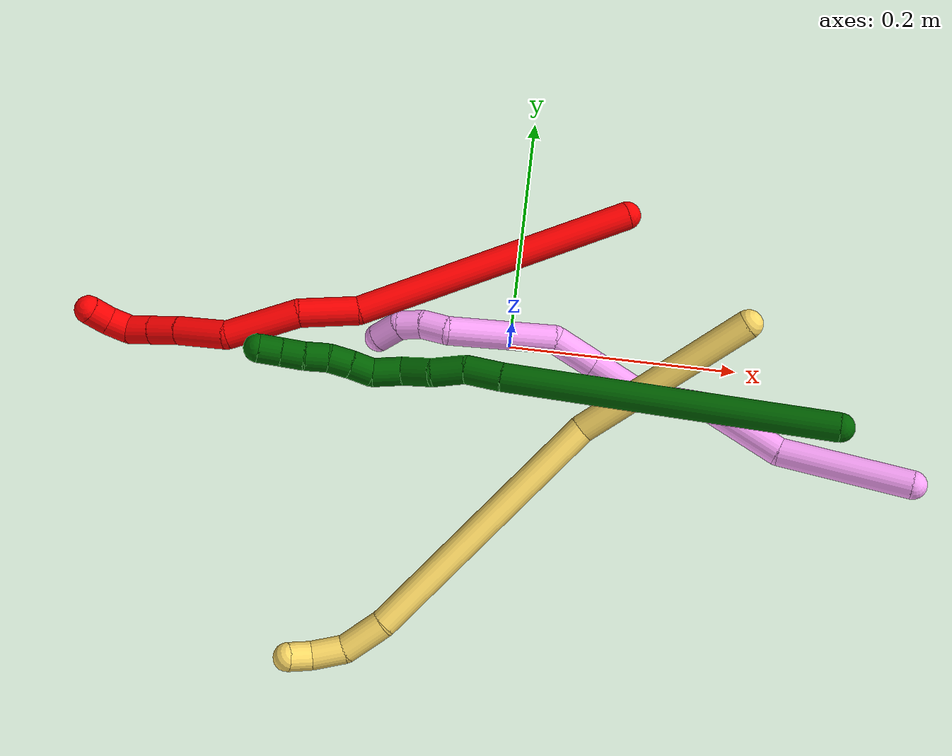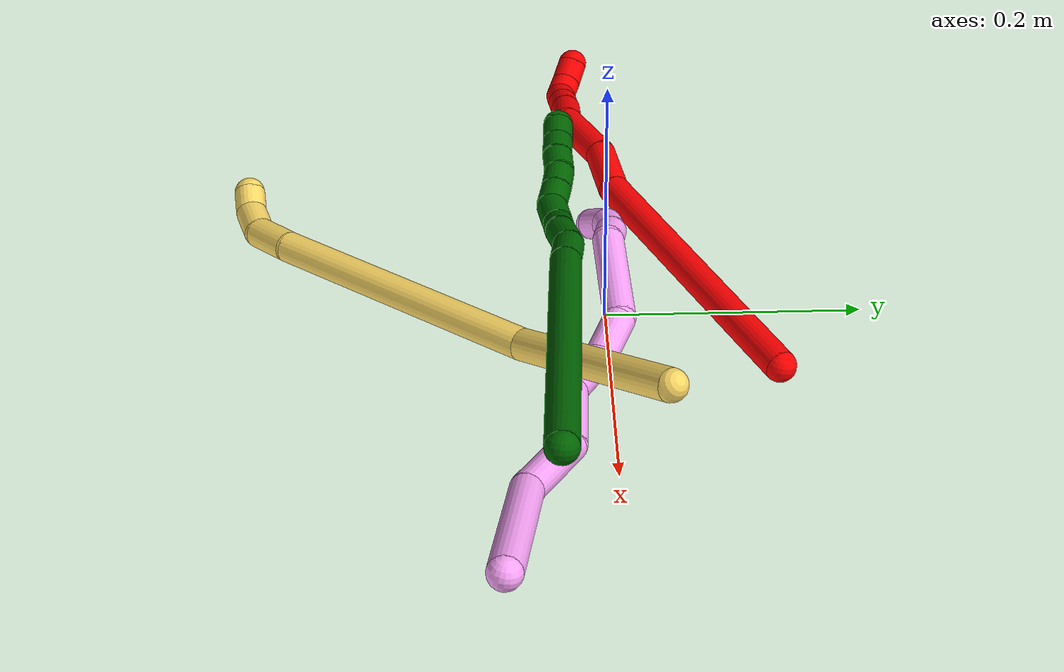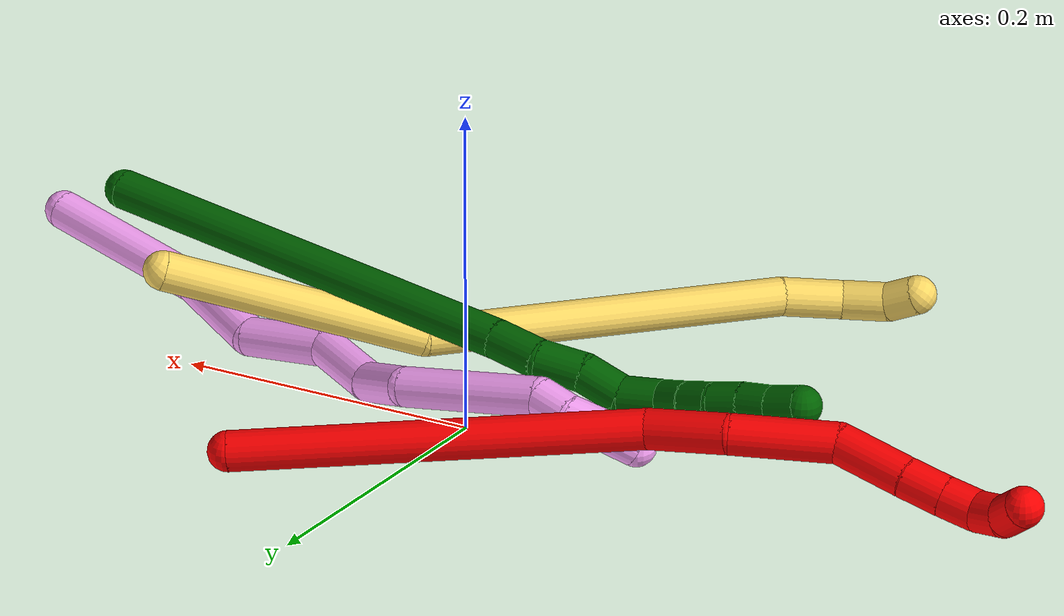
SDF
<sdf version="1.7">
 <world name="default">
  <model name="2">
   <static>0</static>
   <link name="2">
    <collision name="collision-cylinder-e_1_1_4">
     <pose>-0.10783 0.06316 -0.007631 -1.69103 -1.03777 1.14461</pose>
     <geometry><cylinder><radius>0.0125</radius><length>0.250397</length></cylinder></geometry>
     <surface>
      <friction><ode><mu>1.16</mu><mu2>1.16</mu2><slip1>0</slip1><slip2>0</slip2></ode></friction>
      <contact><ode><kp>1e+06</kp><kd>1</kd><max_vel>0</max_vel><min_depth>0.001</min_depth></ode></contact>
     </surface>
    </collision>
    <visual name="visual-cylinder-e_1_1_4">
     <pose>-0.10783 0.06316 -0.007631 -1.69103 -1.03777 1.14461</pose>
     <geometry><cylinder><radius>0.0125</radius><length>0.250397</length></cylinder></geometry>
     <material><ambient>1 0 0 1</ambient></material>
    </visual>
    <collision name="collision-cylinder-e_2_4_5">
     <pose>-0.240329 0.132167 -0.01852 -2.07923 -1.30583 1.83154</pose>
     <geometry><cylinder><radius>0.0125</radius><length>0.051122</length></cylinder></geometry>
     <surface>
      <friction><ode><mu>1.16</mu><mu2>1.16</mu2><slip1>0</slip1><slip2>0</slip2></ode></friction>
      <contact><ode><kp>1e+06</kp><kd>1</kd><max_vel>0</max_vel><min_depth>0.001</min_depth></ode></contact>
     </surface>
    </collision>
    <visual name="visual-cylinder-e_2_4_5">
     <pose>-0.240329 0.132167 -0.01852 -2.07923 -1.30583 1.83154</pose>
     <geometry><cylinder><radius>0.0125</radius><length>0.051122</length></cylinder></geometry>
     <material><ambient>1 0 0 1</ambient></material>
    </visual>
    <collision name="collision-cylinder-e_3_5_6">
     <pose>-0.294226 0.151974 -0.020375 -1.47059 -1.12325 1.03481</pose>
     <geometry><cylinder><radius>0.0125</radius><length>0.064844</length></cylinder></geometry>
     <surface>
      <friction><ode><mu>1.16</mu><mu2>1.16</mu2><slip1>0</slip1><slip2>0</slip2></ode></friction>
      <contact><ode><kp>1e+06</kp><kd>1</kd><max_vel>0</max_vel><min_depth>0.001</min_depth></ode></contact>
     </surface>
    </collision>
    <visual name="visual-cylinder-e_3_5_6">
     <pose>-0.294226 0.151974 -0.020375 -1.47059 -1.12325 1.03481</pose>
     <geometry><cylinder><radius>0.0125</radius><length>0.064844</length></cylinder></geometry>
     <material><ambient>1 0 0 1</ambient></material>
    </visual>
    <collision name="collision-cylinder-e_4_6_7">
     <pose>-0.345849 0.165868 -0.014668 0.015376 -1.3809 -0.012702</pose>
     <geometry><cylinder><radius>0.0125</radius><length>0.045607</length></cylinder></geometry>
     <surface>
      <friction><ode><mu>1.16</mu><mu2>1.16</mu2><slip1>0</slip1><slip2>0</slip2></ode></friction>
      <contact><ode><kp>1e+06</kp><kd>1</kd><max_vel>0</max_vel><min_depth>0.001</min_depth></ode></contact>
     </surface>
    </collision>
    <visual name="visual-cylinder-e_4_6_7">
     <pose>-0.345849 0.165868 -0.014668 0.015376 -1.3809 -0.012702</pose>
     <geometry><cylinder><radius>0.0125</radius><length>0.045607</length></cylinder></geometry>
     <material><ambient>1 0 0 1</ambient></material>
    </visual>
    <collision name="collision-cylinder-e_5_7_8">
     <pose>-0.380903 0.16655 -0.007605 -0.264517 -1.34875 0.211901</pose>
     <geometry><cylinder><radius>0.0125</radius><length>0.025959</length></cylinder></geometry>
     <surface>
      <friction><ode><mu>1.16</mu><mu2>1.16</mu2><slip1>0</slip1><slip2>0</slip2></ode></friction>
      <contact><ode><kp>1e+06</kp><kd>1</kd><max_vel>0</max_vel><min_depth>0.001</min_depth></ode></contact>
     </surface>
    </collision>
    <visual name="visual-cylinder-e_5_7_8">
     <pose>-0.380903 0.16655 -0.007605 -0.264517 -1.34875 0.211901</pose>
     <geometry><cylinder><radius>0.0125</radius><length>0.025959</length></cylinder></geometry>
     <material><ambient>1 0 0 1</ambient></material>
    </visual>
    <collision name="collision-cylinder-e_6_8_9">
     <pose>-0.404302 0.168039 -0.002919 -0.367913 -1.38085 0.305003</pose>
     <geometry><cylinder><radius>0.0125</radius><length>0.021869</length></cylinder></geometry>
     <surface>
      <friction><ode><mu>1.16</mu><mu2>1.16</mu2><slip1>0</slip1><slip2>0</slip2></ode></friction>
      <contact><ode><kp>1e+06</kp><kd>1</kd><max_vel>0</max_vel><min_depth>0.001</min_depth></ode></contact>
     </surface>
    </collision>
    <visual name="visual-cylinder-e_6_8_9">
     <pose>-0.404302 0.168039 -0.002919 -0.367913 -1.38085 0.305003</pose>
     <geometry><cylinder><radius>0.0125</radius><length>0.021869</length></cylinder></geometry>
     <material><ambient>1 0 0 1</ambient></material>
    </visual>
    <collision name="collision-cylinder-e_7_9_10">
     <pose>-0.424554 0.166933 -0.003724 2.54636 -1.23714 -2.3278</pose>
     <geometry><cylinder><radius>0.0125</radius><length>0.020138</length></cylinder></geometry>
     <surface>
      <friction><ode><mu>1.16</mu><mu2>1.16</mu2><slip1>0</slip1><slip2>0</slip2></ode></friction>
      <contact><ode><kp>1e+06</kp><kd>1</kd><max_vel>0</max_vel><min_depth>0.001</min_depth></ode></contact>
     </surface>
    </collision>
    <visual name="visual-cylinder-e_7_9_10">
     <pose>-0.424554 0.166933 -0.003724 2.54636 -1.23714 -2.3278</pose>
     <geometry><cylinder><radius>0.0125</radius><length>0.020138</length></cylinder></geometry>
     <material><ambient>1 0 0 1</ambient></material>
    </visual>
    <collision name="collision-cylinder-e_8_10_2">
     <pose>-0.441073 0.163361 -0.013425 2.89933 -0.772998 -2.56032</pose>
     <geometry><cylinder><radius>0.0125</radius><length>0.020063</length></cylinder></geometry>
     <surface>
      <friction><ode><mu>1.16</mu><mu2>1.16</mu2><slip1>0</slip1><slip2>0</slip2></ode></friction>
      <contact><ode><kp>1e+06</kp><kd>1</kd><max_vel>0</max_vel><min_depth>0.001</min_depth></ode></contact>
     </surface>
    </collision>
    <visual name="visual-cylinder-e_8_10_2">
     <pose>-0.441073 0.163361 -0.013425 2.89933 -0.772998 -2.56032</pose>
     <geometry><cylinder><radius>0.0125</radius><length>0.020063</length></cylinder></geometry>
     <material><ambient>1 0 0 1</ambient></material>
    </visual>
    <collision name="collision-sphere-2">
     <pose>-0.448078 0.161639 -0.020397 0 -0 0</pose>
     <geometry><sphere><radius>0.0125</radius></sphere></geometry>
     <surface>
      <friction><ode><mu>1.16</mu><mu2>1.16</mu2><slip1>0</slip1><slip2>0</slip2></ode></friction>
      <contact><ode><kp>1e+06</kp><kd>1</kd><max_vel>0</max_vel><min_depth>0.001</min_depth></ode></contact>
     </surface>
    </collision>
    <visual name="visual-sphere-2">
     <pose>-0.448078 0.161639 -0.020397 0 -0 0</pose>
     <geometry><sphere><radius>0.0125</radius></sphere></geometry>
     <material><ambient>1 0 0 1</ambient></material>
    </visual>
    <collision name="collision-sphere-10">
     <pose>-0.434068 0.165084 -0.006454 0 -0 0</pose>
     <geometry><sphere><radius>0.0125</radius></sphere></geometry>
     <surface>
      <friction><ode><mu>1.16</mu><mu2>1.16</mu2><slip1>0</slip1><slip2>0</slip2></ode></friction>
      <contact><ode><kp>1e+06</kp><kd>1</kd><max_vel>0</max_vel><min_depth>0.001</min_depth></ode></contact>
     </surface>
    </collision>
    <visual name="visual-sphere-10">
     <pose>-0.434068 0.165084 -0.006454 0 -0 0</pose>
     <geometry><sphere><radius>0.0125</radius></sphere></geometry>
     <material><ambient>1 0 0 1</ambient></material>
    </visual>
    <collision name="collision-sphere-9">
     <pose>-0.41504 0.168782 -0.000993 0 -0 0</pose>
     <geometry><sphere><radius>0.0125</radius></sphere></geometry>
     <surface>
      <friction><ode><mu>1.16</mu><mu2>1.16</mu2><slip1>0</slip1><slip2>0</slip2></ode></friction>
      <contact><ode><kp>1e+06</kp><kd>1</kd><max_vel>0</max_vel><min_depth>0.001</min_depth></ode></contact>
     </surface>
    </collision>
    <visual name="visual-sphere-9">
     <pose>-0.41504 0.168782 -0.000993 0 -0 0</pose>
     <geometry><sphere><radius>0.0125</radius></sphere></geometry>
     <material><ambient>1 0 0 1</ambient></material>
    </visual>
    <collision name="collision-sphere-4">
     <pose>-0.21566 0.12632 -0.015262 0 -0 0</pose>
     <geometry><sphere><radius>0.0125</radius></sphere></geometry>
     <surface>
      <friction><ode><mu>1.16</mu><mu2>1.16</mu2><slip1>0</slip1><slip2>0</slip2></ode></friction>
      <contact><ode><kp>1e+06</kp><kd>1</kd><max_vel>0</max_vel><min_depth>0.001</min_depth></ode></contact>
     </surface>
    </collision>
    <visual name="visual-sphere-4">
     <pose>-0.21566 0.12632 -0.015262 0 -0 0</pose>
     <geometry><sphere><radius>0.0125</radius></sphere></geometry>
     <material><ambient>1 0 0 1</ambient></material>
    </visual>
    <collision name="collision-sphere-1">
     <geometry><sphere><radius>0.0125</radius></sphere></geometry>
     <surface>
      <friction><ode><mu>1.16</mu><mu2>1.16</mu2><slip1>0</slip1><slip2>0</slip2></ode></friction>
      <contact><ode><kp>1e+06</kp><kd>1</kd><max_vel>0</max_vel><min_depth>0.001</min_depth></ode></contact>
     </surface>
    </collision>
    <visual name="visual-sphere-1">
     <geometry><sphere><radius>0.0125</radius></sphere></geometry>
     <material><ambient>1 0 0 1</ambient></material>
    </visual>
    <collision name="collision-sphere-8">
     <pose>-0.393564 0.167297 -0.004846 0 -0 0</pose>
     <geometry><sphere><radius>0.0125</radius></sphere></geometry>
     <surface>
      <friction><ode><mu>1.16</mu><mu2>1.16</mu2><slip1>0</slip1><slip2>0</slip2></ode></friction>
      <contact><ode><kp>1e+06</kp><kd>1</kd><max_vel>0</max_vel><min_depth>0.001</min_depth></ode></contact>
     </surface>
    </collision>
    <visual name="visual-sphere-8">
     <pose>-0.393564 0.167297 -0.004846 0 -0 0</pose>
     <geometry><sphere><radius>0.0125</radius></sphere></geometry>
     <material><ambient>1 0 0 1</ambient></material>
    </visual>
    <collision name="collision-sphere-5">
     <pose>-0.264998 0.138014 -0.021779 0 -0 0</pose>
     <geometry><sphere><radius>0.0125</radius></sphere></geometry>
     <surface>
      <friction><ode><mu>1.16</mu><mu2>1.16</mu2><slip1>0</slip1><slip2>0</slip2></ode></friction>
      <contact><ode><kp>1e+06</kp><kd>1</kd><max_vel>0</max_vel><min_depth>0.001</min_depth></ode></contact>
     </surface>
    </collision>
    <visual name="visual-sphere-5">
     <pose>-0.264998 0.138014 -0.021779 0 -0 0</pose>
     <geometry><sphere><radius>0.0125</radius></sphere></geometry>
     <material><ambient>1 0 0 1</ambient></material>
    </visual>
    <collision name="collision-sphere-6">
     <pose>-0.323455 0.165935 -0.018971 0 -0 0</pose>
     <geometry><sphere><radius>0.0125</radius></sphere></geometry>
     <surface>
      <friction><ode><mu>1.16</mu><mu2>1.16</mu2><slip1>0</slip1><slip2>0</slip2></ode></friction>
      <contact><ode><kp>1e+06</kp><kd>1</kd><max_vel>0</max_vel><min_depth>0.001</min_depth></ode></contact>
     </surface>
    </collision>
    <visual name="visual-sphere-6">
     <pose>-0.323455 0.165935 -0.018971 0 -0 0</pose>
     <geometry><sphere><radius>0.0125</radius></sphere></geometry>
     <material><ambient>1 0 0 1</ambient></material>
    </visual>
    <collision name="collision-sphere-7">
     <pose>-0.368242 0.165802 -0.010364 0 -0 0</pose>
     <geometry><sphere><radius>0.0125</radius></sphere></geometry>
     <surface>
      <friction><ode><mu>1.16</mu><mu2>1.16</mu2><slip1>0</slip1><slip2>0</slip2></ode></friction>
      <contact><ode><kp>1e+06</kp><kd>1</kd><max_vel>0</max_vel><min_depth>0.001</min_depth></ode></contact>
     </surface>
    </collision>
    <visual name="visual-sphere-7">
     <pose>-0.368242 0.165802 -0.010364 0 -0 0</pose>
     <geometry><sphere><radius>0.0125</radius></sphere></geometry>
     <material><ambient>1 0 0 1</ambient></material>
    </visual>
    <inertial>
     <pose>-0.220534 0.109257 -0.010907 0 -0 0</pose>
     <mass>0.5</mass>
     <inertia>
      <ixx>0.00087</ixx>
      <ixy>0</ixy>
      <ixz>0</ixz>
      <iyy>0.001645</iyy>
      <iyz>0</iyz>
      <izz>0.000507</izz>
     </inertia>
    </inertial>
   </link>
   <pose>0.089402 0.126246 0.012318 2.94739 -0.08262 -0.037764</pose>
  </model>
  <model name="4">
   <static>0</static>
   <link name="4">
    <collision name="collision-cylinder-e_1_1_4">
     <pose>-0.055822 0.010734 0.007309 -0.973 -1.34223 0.795231</pose>
     <geometry><cylinder><radius>0.0125</radius><length>0.114625</length></cylinder></geometry>
     <surface>
      <friction><ode><mu>1.16</mu><mu2>1.16</mu2><slip1>0</slip1><slip2>0</slip2></ode></friction>
      <contact><ode><kp>1e+06</kp><kd>1</kd><max_vel>0</max_vel><min_depth>0.001</min_depth></ode></contact>
     </surface>
    </collision>
    <visual name="visual-cylinder-e_1_1_4">
     <pose>-0.055822 0.010734 0.007309 -0.973 -1.34223 0.795231</pose>
     <geometry><cylinder><radius>0.0125</radius><length>0.114625</length></cylinder></geometry>
     <material><ambient>1 0.65098 0.996078 1</ambient></material>
    </visual>
    <collision name="collision-cylinder-e_2_4_5">
     <pose>-0.147063 0.016816 0.016264 1.23064 -1.43237 -1.10307</pose>
     <geometry><cylinder><radius>0.0125</radius><length>0.071523</length></cylinder></geometry>
     <surface>
      <friction><ode><mu>1.16</mu><mu2>1.16</mu2><slip1>0</slip1><slip2>0</slip2></ode></friction>
      <contact><ode><kp>1e+06</kp><kd>1</kd><max_vel>0</max_vel><min_depth>0.001</min_depth></ode></contact>
     </surface>
    </collision>
    <visual name="visual-cylinder-e_2_4_5">
     <pose>-0.147063 0.016816 0.016264 1.23064 -1.43237 -1.10307</pose>
     <geometry><cylinder><radius>0.0125</radius><length>0.071523</length></cylinder></geometry>
     <material><ambient>1 0.65098 0.996078 1</ambient></material>
    </visual>
    <collision name="collision-cylinder-e_3_5_6">
     <pose>-0.209808 0.02173 0.013389 -2.0123 -1.20139 1.6492</pose>
     <geometry><cylinder><radius>0.0125</radius><length>0.058603</length></cylinder></geometry>
     <surface>
      <friction><ode><mu>1.16</mu><mu2>1.16</mu2><slip1>0</slip1><slip2>0</slip2></ode></friction>
      <contact><ode><kp>1e+06</kp><kd>1</kd><max_vel>0</max_vel><min_depth>0.001</min_depth></ode></contact>
     </surface>
    </collision>
    <visual name="visual-cylinder-e_3_5_6">
     <pose>-0.209808 0.02173 0.013389 -2.0123 -1.20139 1.6492</pose>
     <geometry><cylinder><radius>0.0125</radius><length>0.058603</length></cylinder></geometry>
     <material><ambient>1 0.65098 0.996078 1</ambient></material>
    </visual>
    <collision name="collision-cylinder-e_4_6_7">
     <pose>-0.262811 0.028153 0.008374 1.72696 -1.44755 -1.60404</pose>
     <geometry><cylinder><radius>0.0125</radius><length>0.051749</length></cylinder></geometry>
     <surface>
      <friction><ode><mu>1.16</mu><mu2>1.16</mu2><slip1>0</slip1><slip2>0</slip2></ode></friction>
      <contact><ode><kp>1e+06</kp><kd>1</kd><max_vel>0</max_vel><min_depth>0.001</min_depth></ode></contact>
     </surface>
    </collision>
    <visual name="visual-cylinder-e_4_6_7">
     <pose>-0.262811 0.028153 0.008374 1.72696 -1.44755 -1.60404</pose>
     <geometry><cylinder><radius>0.0125</radius><length>0.051749</length></cylinder></geometry>
     <material><ambient>1 0.65098 0.996078 1</ambient></material>
    </visual>
    <collision name="collision-cylinder-e_5_7_8">
     <pose>-0.307721 0.024344 0.000352 3.05326 -1.19641 -3.01208</pose>
     <geometry><cylinder><radius>0.0125</radius><length>0.041326</length></cylinder></geometry>
     <surface>
      <friction><ode><mu>1.16</mu><mu2>1.16</mu2><slip1>0</slip1><slip2>0</slip2></ode></friction>
      <contact><ode><kp>1e+06</kp><kd>1</kd><max_vel>0</max_vel><min_depth>0.001</min_depth></ode></contact>
     </surface>
    </collision>
    <visual name="visual-cylinder-e_5_7_8">
     <pose>-0.307721 0.024344 0.000352 3.05326 -1.19641 -3.01208</pose>
     <geometry><cylinder><radius>0.0125</radius><length>0.041326</length></cylinder></geometry>
     <material><ambient>1 0.65098 0.996078 1</ambient></material>
    </visual>
    <collision name="collision-cylinder-e_6_8_9">
     <pose>-0.368963 0.042756 -0.015001 -1.96005 -1.11448 1.49731</pose>
     <geometry><cylinder><radius>0.0125</radius><length>0.093596</length></cylinder></geometry>
     <surface>
      <friction><ode><mu>1.16</mu><mu2>1.16</mu2><slip1>0</slip1><slip2>0</slip2></ode></friction>
      <contact><ode><kp>1e+06</kp><kd>1</kd><max_vel>0</max_vel><min_depth>0.001</min_depth></ode></contact>
     </surface>
    </collision>
    <visual name="visual-cylinder-e_6_8_9">
     <pose>-0.368963 0.042756 -0.015001 -1.96005 -1.11448 1.49731</pose>
     <geometry><cylinder><radius>0.0125</radius><length>0.093596</length></cylinder></geometry>
     <material><ambient>1 0.65098 0.996078 1</ambient></material>
    </visual>
    <collision name="collision-cylinder-e_7_9_10">
     <pose>-0.422207 0.063749 -0.020902 -0.7829 -1.33374 0.628295</pose>
     <geometry><cylinder><radius>0.0125</radius><length>0.023116</length></cylinder></geometry>
     <surface>
      <friction><ode><mu>1.16</mu><mu2>1.16</mu2><slip1>0</slip1><slip2>0</slip2></ode></friction>
      <contact><ode><kp>1e+06</kp><kd>1</kd><max_vel>0</max_vel><min_depth>0.001</min_depth></ode></contact>
     </surface>
    </collision>
    <visual name="visual-cylinder-e_7_9_10">
     <pose>-0.422207 0.063749 -0.020902 -0.7829 -1.33374 0.628295</pose>
     <geometry><cylinder><radius>0.0125</radius><length>0.023116</length></cylinder></geometry>
     <material><ambient>1 0.65098 0.996078 1</ambient></material>
    </visual>
    <collision name="collision-cylinder-e_8_10_11">
     <pose>-0.442689 0.069953 -0.016664 -1.07608 -1.08577 0.691226</pose>
     <geometry><cylinder><radius>0.0125</radius><length>0.020906</length></cylinder></geometry>
     <surface>
      <friction><ode><mu>1.16</mu><mu2>1.16</mu2><slip1>0</slip1><slip2>0</slip2></ode></friction>
      <contact><ode><kp>1e+06</kp><kd>1</kd><max_vel>0</max_vel><min_depth>0.001</min_depth></ode></contact>
     </surface>
    </collision>
    <visual name="visual-cylinder-e_8_10_11">
     <pose>-0.442689 0.069953 -0.016664 -1.07608 -1.08577 0.691226</pose>
     <geometry><cylinder><radius>0.0125</radius><length>0.020906</length></cylinder></geometry>
     <material><ambient>1 0.65098 0.996078 1</ambient></material>
    </visual>
    <collision name="collision-cylinder-e_9_11_2">
     <pose>-0.458985 0.082126 -0.008114 -0.901601 -0.611493 0.303225</pose>
     <geometry><cylinder><radius>0.0125</radius><length>0.024555</length></cylinder></geometry>
     <surface>
      <friction><ode><mu>1.16</mu><mu2>1.16</mu2><slip1>0</slip1><slip2>0</slip2></ode></friction>
      <contact><ode><kp>1e+06</kp><kd>1</kd><max_vel>0</max_vel><min_depth>0.001</min_depth></ode></contact>
     </surface>
    </collision>
    <visual name="visual-cylinder-e_9_11_2">
     <pose>-0.458985 0.082126 -0.008114 -0.901601 -0.611493 0.303225</pose>
     <geometry><cylinder><radius>0.0125</radius><length>0.024555</length></cylinder></geometry>
     <material><ambient>1 0.65098 0.996078 1</ambient></material>
    </visual>
    <collision name="collision-sphere-2">
     <pose>-0.466034 0.090011 -0.001878 0 -0 0</pose>
     <geometry><sphere><radius>0.0125</radius></sphere></geometry>
     <surface>
      <friction><ode><mu>1.16</mu><mu2>1.16</mu2><slip1>0</slip1><slip2>0</slip2></ode></friction>
      <contact><ode><kp>1e+06</kp><kd>1</kd><max_vel>0</max_vel><min_depth>0.001</min_depth></ode></contact>
     </surface>
    </collision>
    <visual name="visual-sphere-2">
     <pose>-0.466034 0.090011 -0.001878 0 -0 0</pose>
     <geometry><sphere><radius>0.0125</radius></sphere></geometry>
     <material><ambient>1 0.65098 0.996078 1</ambient></material>
    </visual>
    <collision name="collision-sphere-11">
     <pose>-0.451937 0.074242 -0.01435 0 -0 0</pose>
     <geometry><sphere><radius>0.0125</radius></sphere></geometry>
     <surface>
      <friction><ode><mu>1.16</mu><mu2>1.16</mu2><slip1>0</slip1><slip2>0</slip2></ode></friction>
      <contact><ode><kp>1e+06</kp><kd>1</kd><max_vel>0</max_vel><min_depth>0.001</min_depth></ode></contact>
     </surface>
    </collision>
    <visual name="visual-sphere-11">
     <pose>-0.451937 0.074242 -0.01435 0 -0 0</pose>
     <geometry><sphere><radius>0.0125</radius></sphere></geometry>
     <material><ambient>1 0.65098 0.996078 1</ambient></material>
    </visual>
    <collision name="collision-sphere-10">
     <pose>-0.433442 0.065663 -0.018978 0 -0 0</pose>
     <geometry><sphere><radius>0.0125</radius></sphere></geometry>
     <surface>
      <friction><ode><mu>1.16</mu><mu2>1.16</mu2><slip1>0</slip1><slip2>0</slip2></ode></friction>
      <contact><ode><kp>1e+06</kp><kd>1</kd><max_vel>0</max_vel><min_depth>0.001</min_depth></ode></contact>
     </surface>
    </collision>
    <visual name="visual-sphere-10">
     <pose>-0.433442 0.065663 -0.018978 0 -0 0</pose>
     <geometry><sphere><radius>0.0125</radius></sphere></geometry>
     <material><ambient>1 0.65098 0.996078 1</ambient></material>
    </visual>
    <collision name="collision-sphere-9">
     <pose>-0.410972 0.061834 -0.022826 0 -0 0</pose>
     <geometry><sphere><radius>0.0125</radius></sphere></geometry>
     <surface>
      <friction><ode><mu>1.16</mu><mu2>1.16</mu2><slip1>0</slip1><slip2>0</slip2></ode></friction>
      <contact><ode><kp>1e+06</kp><kd>1</kd><max_vel>0</max_vel><min_depth>0.001</min_depth></ode></contact>
     </surface>
    </collision>
    <visual name="visual-sphere-9">
     <pose>-0.410972 0.061834 -0.022826 0 -0 0</pose>
     <geometry><sphere><radius>0.0125</radius></sphere></geometry>
     <material><ambient>1 0.65098 0.996078 1</ambient></material>
    </visual>
    <collision name="collision-sphere-4">
     <pose>-0.111643 0.021468 0.014617 0 -0 0</pose>
     <geometry><sphere><radius>0.0125</radius></sphere></geometry>
     <surface>
      <friction><ode><mu>1.16</mu><mu2>1.16</mu2><slip1>0</slip1><slip2>0</slip2></ode></friction>
      <contact><ode><kp>1e+06</kp><kd>1</kd><max_vel>0</max_vel><min_depth>0.001</min_depth></ode></contact>
     </surface>
    </collision>
    <visual name="visual-sphere-4">
     <pose>-0.111643 0.021468 0.014617 0 -0 0</pose>
     <geometry><sphere><radius>0.0125</radius></sphere></geometry>
     <material><ambient>1 0.65098 0.996078 1</ambient></material>
    </visual>
    <collision name="collision-sphere-1">
     <geometry><sphere><radius>0.0125</radius></sphere></geometry>
     <surface>
      <friction><ode><mu>1.16</mu><mu2>1.16</mu2><slip1>0</slip1><slip2>0</slip2></ode></friction>
      <contact><ode><kp>1e+06</kp><kd>1</kd><max_vel>0</max_vel><min_depth>0.001</min_depth></ode></contact>
     </surface>
    </collision>
    <visual name="visual-sphere-1">
     <geometry><sphere><radius>0.0125</radius></sphere></geometry>
     <material><ambient>1 0.65098 0.996078 1</ambient></material>
    </visual>
    <collision name="collision-sphere-8">
     <pose>-0.326953 0.023677 -0.007175 0 -0 0</pose>
     <geometry><sphere><radius>0.0125</radius></sphere></geometry>
     <surface>
      <friction><ode><mu>1.16</mu><mu2>1.16</mu2><slip1>0</slip1><slip2>0</slip2></ode></friction>
      <contact><ode><kp>1e+06</kp><kd>1</kd><max_vel>0</max_vel><min_depth>0.001</min_depth></ode></contact>
     </surface>
    </collision>
    <visual name="visual-sphere-8">
     <pose>-0.326953 0.023677 -0.007175 0 -0 0</pose>
     <geometry><sphere><radius>0.0125</radius></sphere></geometry>
     <material><ambient>1 0.65098 0.996078 1</ambient></material>
    </visual>
    <collision name="collision-sphere-5">
     <pose>-0.182483 0.012164 0.01791 0 -0 0</pose>
     <geometry><sphere><radius>0.0125</radius></sphere></geometry>
     <surface>
      <friction><ode><mu>1.16</mu><mu2>1.16</mu2><slip1>0</slip1><slip2>0</slip2></ode></friction>
      <contact><ode><kp>1e+06</kp><kd>1</kd><max_vel>0</max_vel><min_depth>0.001</min_depth></ode></contact>
     </surface>
    </collision>
    <visual name="visual-sphere-5">
     <pose>-0.182483 0.012164 0.01791 0 -0 0</pose>
     <geometry><sphere><radius>0.0125</radius></sphere></geometry>
     <material><ambient>1 0.65098 0.996078 1</ambient></material>
    </visual>
    <collision name="collision-sphere-6">
     <pose>-0.237133 0.031295 0.008869 0 -0 0</pose>
     <geometry><sphere><radius>0.0125</radius></sphere></geometry>
     <surface>
      <friction><ode><mu>1.16</mu><mu2>1.16</mu2><slip1>0</slip1><slip2>0</slip2></ode></friction>
      <contact><ode><kp>1e+06</kp><kd>1</kd><max_vel>0</max_vel><min_depth>0.001</min_depth></ode></contact>
     </surface>
    </collision>
    <visual name="visual-sphere-6">
     <pose>-0.237133 0.031295 0.008869 0 -0 0</pose>
     <geometry><sphere><radius>0.0125</radius></sphere></geometry>
     <material><ambient>1 0.65098 0.996078 1</ambient></material>
    </visual>
    <collision name="collision-sphere-7">
     <pose>-0.288489 0.025011 0.007879 0 -0 0</pose>
     <geometry><sphere><radius>0.0125</radius></sphere></geometry>
     <surface>
      <friction><ode><mu>1.16</mu><mu2>1.16</mu2><slip1>0</slip1><slip2>0</slip2></ode></friction>
      <contact><ode><kp>1e+06</kp><kd>1</kd><max_vel>0</max_vel><min_depth>0.001</min_depth></ode></contact>
     </surface>
    </collision>
    <visual name="visual-sphere-7">
     <pose>-0.288489 0.025011 0.007879 0 -0 0</pose>
     <geometry><sphere><radius>0.0125</radius></sphere></geometry>
     <material><ambient>1 0.65098 0.996078 1</ambient></material>
    </visual>
    <inertial>
     <pose>-0.240696 0.030248 0.001597 0 -0 0</pose>
     <mass>0.5</mass>
     <inertia><ixx>4.3e-05</ixx><ixy>0</ixy><ixz>0</ixz><iyy>0.00032</iyy><iyz>0</iyz><izz>0.000211</izz></inertia>
    </inertial>
   </link>
   <pose>0.352061 -0.082042 0.046579 3.01215 -0.104241 -0.351537</pose>
  </model>
  <model name="5">
   <static>0</static>
   <link name="5">
    <collision name="collision-cylinder-e_1_1_4">
     <pose>-0.020942 -0.028995 0.076807 0.360968 -0.249764 -0.045805</pose>
     <geometry><cylinder><radius>0.0125</radius><length>0.169453</length></cylinder></geometry>
     <surface>
      <friction><ode><mu>1.16</mu><mu2>1.16</mu2><slip1>0</slip1><slip2>0</slip2></ode></friction>
      <contact><ode><kp>1e+06</kp><kd>1</kd><max_vel>0</max_vel><min_depth>0.001</min_depth></ode></contact>
     </surface>
    </collision>
    <visual name="visual-cylinder-e_1_1_4">
     <pose>-0.020942 -0.028995 0.076807 0.360968 -0.249764 -0.045805</pose>
     <geometry><cylinder><radius>0.0125</radius><length>0.169453</length></cylinder></geometry>
     <material><ambient>1 0.858824 0.4 1</ambient></material>
    </visual>
    <collision name="collision-cylinder-e_2_4_5">
     <pose>-0.10956 -0.100126 0.242971 0.440621 -0.600601 -0.138475</pose>
     <geometry><cylinder><radius>0.0125</radius><length>0.239499</length></cylinder></geometry>
     <surface>
      <friction><ode><mu>1.16</mu><mu2>1.16</mu2><slip1>0</slip1><slip2>0</slip2></ode></friction>
      <contact><ode><kp>1e+06</kp><kd>1</kd><max_vel>0</max_vel><min_depth>0.001</min_depth></ode></contact>
     </surface>
    </collision>
    <visual name="visual-cylinder-e_2_4_5">
     <pose>-0.10956 -0.100126 0.242971 0.440621 -0.600601 -0.138475</pose>
     <geometry><cylinder><radius>0.0125</radius><length>0.239499</length></cylinder></geometry>
     <material><ambient>1 0.858824 0.4 1</ambient></material>
    </visual>
    <collision name="collision-cylinder-e_3_5_6">
     <pose>-0.18512 -0.150996 0.348672 0.49082 -0.402298 -0.102052</pose>
     <geometry><cylinder><radius>0.0125</radius><length>0.040281</length></cylinder></geometry>
     <surface>
      <friction><ode><mu>1.16</mu><mu2>1.16</mu2><slip1>0</slip1><slip2>0</slip2></ode></friction>
      <contact><ode><kp>1e+06</kp><kd>1</kd><max_vel>0</max_vel><min_depth>0.001</min_depth></ode></contact>
     </surface>
    </collision>
    <visual name="visual-cylinder-e_3_5_6">
     <pose>-0.18512 -0.150996 0.348672 0.49082 -0.402298 -0.102052</pose>
     <geometry><cylinder><radius>0.0125</radius><length>0.040281</length></cylinder></geometry>
     <material><ambient>1 0.858824 0.4 1</ambient></material>
    </visual>
    <collision name="collision-cylinder-e_4_6_7">
     <pose>-0.195476 -0.171088 0.374485 0.875798 -0.165507 -0.077631</pose>
     <geometry><cylinder><radius>0.0125</radius><length>0.029981</length></cylinder></geometry>
     <surface>
      <friction><ode><mu>1.16</mu><mu2>1.16</mu2><slip1>0</slip1><slip2>0</slip2></ode></friction>
      <contact><ode><kp>1e+06</kp><kd>1</kd><max_vel>0</max_vel><min_depth>0.001</min_depth></ode></contact>
     </surface>
    </collision>
    <visual name="visual-cylinder-e_4_6_7">
     <pose>-0.195476 -0.171088 0.374485 0.875798 -0.165507 -0.077631</pose>
     <geometry><cylinder><radius>0.0125</radius><length>0.029981</length></cylinder></geometry>
     <material><ambient>1 0.858824 0.4 1</ambient></material>
    </visual>
    <collision name="collision-cylinder-e_5_7_2">
     <pose>-0.200065 -0.192178 0.386917 1.27529 -0.2054 -0.15242</pose>
     <geometry><cylinder><radius>0.0125</radius><length>0.020786</length></cylinder></geometry>
     <surface>
      <friction><ode><mu>1.16</mu><mu2>1.16</mu2><slip1>0</slip1><slip2>0</slip2></ode></friction>
      <contact><ode><kp>1e+06</kp><kd>1</kd><max_vel>0</max_vel><min_depth>0.001</min_depth></ode></contact>
     </surface>
    </collision>
    <visual name="visual-cylinder-e_5_7_2">
     <pose>-0.200065 -0.192178 0.386917 1.27529 -0.2054 -0.15242</pose>
     <geometry><cylinder><radius>0.0125</radius><length>0.020786</length></cylinder></geometry>
     <material><ambient>1 0.858824 0.4 1</ambient></material>
    </visual>
    <collision name="collision-sphere-2">
     <pose>-0.202185 -0.201911 0.38988 0 -0 0</pose>
     <geometry><sphere><radius>0.0125</radius></sphere></geometry>
     <surface>
      <friction><ode><mu>1.16</mu><mu2>1.16</mu2><slip1>0</slip1><slip2>0</slip2></ode></friction>
      <contact><ode><kp>1e+06</kp><kd>1</kd><max_vel>0</max_vel><min_depth>0.001</min_depth></ode></contact>
     </surface>
    </collision>
    <visual name="visual-sphere-2">
     <pose>-0.202185 -0.201911 0.38988 0 -0 0</pose>
     <geometry><sphere><radius>0.0125</radius></sphere></geometry>
     <material><ambient>1 0.858824 0.4 1</ambient></material>
    </visual>
    <collision name="collision-sphere-7">
     <pose>-0.197945 -0.182444 0.383954 0 -0 0</pose>
     <geometry><sphere><radius>0.0125</radius></sphere></geometry>
     <surface>
      <friction><ode><mu>1.16</mu><mu2>1.16</mu2><slip1>0</slip1><slip2>0</slip2></ode></friction>
      <contact><ode><kp>1e+06</kp><kd>1</kd><max_vel>0</max_vel><min_depth>0.001</min_depth></ode></contact>
     </surface>
    </collision>
    <visual name="visual-sphere-7">
     <pose>-0.197945 -0.182444 0.383954 0 -0 0</pose>
     <geometry><sphere><radius>0.0125</radius></sphere></geometry>
     <material><ambient>1 0.858824 0.4 1</ambient></material>
    </visual>
    <collision name="collision-sphere-6">
     <pose>-0.193006 -0.159731 0.365017 0 -0 0</pose>
     <geometry><sphere><radius>0.0125</radius></sphere></geometry>
     <surface>
      <friction><ode><mu>1.16</mu><mu2>1.16</mu2><slip1>0</slip1><slip2>0</slip2></ode></friction>
      <contact><ode><kp>1e+06</kp><kd>1</kd><max_vel>0</max_vel><min_depth>0.001</min_depth></ode></contact>
     </surface>
    </collision>
    <visual name="visual-sphere-6">
     <pose>-0.193006 -0.159731 0.365017 0 -0 0</pose>
     <geometry><sphere><radius>0.0125</radius></sphere></geometry>
     <material><ambient>1 0.858824 0.4 1</ambient></material>
    </visual>
    <collision name="collision-sphere-5">
     <pose>-0.177235 -0.142261 0.332327 0 -0 0</pose>
     <geometry><sphere><radius>0.0125</radius></sphere></geometry>
     <surface>
      <friction><ode><mu>1.16</mu><mu2>1.16</mu2><slip1>0</slip1><slip2>0</slip2></ode></friction>
      <contact><ode><kp>1e+06</kp><kd>1</kd><max_vel>0</max_vel><min_depth>0.001</min_depth></ode></contact>
     </surface>
    </collision>
    <visual name="visual-sphere-5">
     <pose>-0.177235 -0.142261 0.332327 0 -0 0</pose>
     <geometry><sphere><radius>0.0125</radius></sphere></geometry>
     <material><ambient>1 0.858824 0.4 1</ambient></material>
    </visual>
    <collision name="collision-sphere-1">
     <geometry><sphere><radius>0.0125</radius></sphere></geometry>
     <surface>
      <friction><ode><mu>1.16</mu><mu2>1.16</mu2><slip1>0</slip1><slip2>0</slip2></ode></friction>
      <contact><ode><kp>1e+06</kp><kd>1</kd><max_vel>0</max_vel><min_depth>0.001</min_depth></ode></contact>
     </surface>
    </collision>
    <visual name="visual-sphere-1">
     <geometry><sphere><radius>0.0125</radius></sphere></geometry>
     <material><ambient>1 0.858824 0.4 1</ambient></material>
    </visual>
    <collision name="collision-sphere-4">
     <pose>-0.041885 -0.05799 0.153614 0 -0 0</pose>
     <geometry><sphere><radius>0.0125</radius></sphere></geometry>
     <surface>
      <friction><ode><mu>1.16</mu><mu2>1.16</mu2><slip1>0</slip1><slip2>0</slip2></ode></friction>
      <contact><ode><kp>1e+06</kp><kd>1</kd><max_vel>0</max_vel><min_depth>0.001</min_depth></ode></contact>
     </surface>
    </collision>
    <visual name="visual-sphere-4">
     <pose>-0.041885 -0.05799 0.153614 0 -0 0</pose>
     <geometry><sphere><radius>0.0125</radius></sphere></geometry>
     <material><ambient>1 0.858824 0.4 1</ambient></material>
    </visual>
    <inertial>
     <pose>-0.094528 -0.088199 0.209042 0 -0 0</pose>
     <mass>0.5</mass>
     <inertia>
      <ixx>0.001187</ixx>
      <ixy>0</ixy>
      <ixz>0</ixz>
      <iyy>0.001301</iyy>
      <iyz>0</iyz>
      <izz>0.001342</izz>
     </inertia>
    </inertial>
   </link>
   <pose>0.195701 0.034751 0.075411 -2.50798 0.569958 1.69882</pose>
  </model>
  <model name="6">
   <static>0</static>
   <link name="6">
    <collision name="collision-cylinder-e_1_1_4">
     <pose>-0.127988 0.061076 0.002517 -1.52961 -1.12522 1.08838</pose>
     <geometry><cylinder><radius>0.0125</radius><length>0.283673</length></cylinder></geometry>
     <surface>
      <friction><ode><mu>1.16</mu><mu2>1.16</mu2><slip1>0</slip1><slip2>0</slip2></ode></friction>
      <contact><ode><kp>1e+06</kp><kd>1</kd><max_vel>0</max_vel><min_depth>0.001</min_depth></ode></contact>
     </surface>
    </collision>
    <visual name="visual-cylinder-e_1_1_4">
     <pose>-0.127988 0.061076 0.002517 -1.52961 -1.12522 1.08838</pose>
     <geometry><cylinder><radius>0.0125</radius><length>0.283673</length></cylinder></geometry>
     <material><ambient>0 0.392157 0.003922 1</ambient></material>
    </visual>
    <collision name="collision-cylinder-e_2_4_5">
     <pose>-0.271054 0.128188 0.005685 -1.46339 -1.18798 1.0903</pose>
     <geometry><cylinder><radius>0.0125</radius><length>0.032508</length></cylinder></geometry>
     <surface>
      <friction><ode><mu>1.16</mu><mu2>1.16</mu2><slip1>0</slip1><slip2>0</slip2></ode></friction>
      <contact><ode><kp>1e+06</kp><kd>1</kd><max_vel>0</max_vel><min_depth>0.001</min_depth></ode></contact>
     </surface>
    </collision>
    <visual name="visual-cylinder-e_2_4_5">
     <pose>-0.271054 0.128188 0.005685 -1.46339 -1.18798 1.0903</pose>
     <geometry><cylinder><radius>0.0125</radius><length>0.032508</length></cylinder></geometry>
     <material><ambient>0 0.392157 0.003922 1</ambient></material>
    </visual>
    <collision name="collision-cylinder-e_3_5_6">
     <pose>-0.297477 0.143376 0.007309 -1.46491 -0.889282 0.809671</pose>
     <geometry><cylinder><radius>0.0125</radius><length>0.029218</length></cylinder></geometry>
     <surface>
      <friction><ode><mu>1.16</mu><mu2>1.16</mu2><slip1>0</slip1><slip2>0</slip2></ode></friction>
      <contact><ode><kp>1e+06</kp><kd>1</kd><max_vel>0</max_vel><min_depth>0.001</min_depth></ode></contact>
     </surface>
    </collision>
    <visual name="visual-cylinder-e_3_5_6">
     <pose>-0.297477 0.143376 0.007309 -1.46491 -0.889282 0.809671</pose>
     <geometry><cylinder><radius>0.0125</radius><length>0.029218</length></cylinder></geometry>
     <material><ambient>0 0.392157 0.003922 1</ambient></material>
    </visual>
    <collision name="collision-cylinder-e_4_6_7">
     <pose>-0.320506 0.158968 0.011671 -1.08632 -1.01371 0.646892</pose>
     <geometry><cylinder><radius>0.0125</radius><length>0.02753</length></cylinder></geometry>
     <surface>
      <friction><ode><mu>1.16</mu><mu2>1.16</mu2><slip1>0</slip1><slip2>0</slip2></ode></friction>
      <contact><ode><kp>1e+06</kp><kd>1</kd><max_vel>0</max_vel><min_depth>0.001</min_depth></ode></contact>
     </surface>
    </collision>
    <visual name="visual-cylinder-e_4_6_7">
     <pose>-0.320506 0.158968 0.011671 -1.08632 -1.01371 0.646892</pose>
     <geometry><cylinder><radius>0.0125</radius><length>0.02753</length></cylinder></geometry>
     <material><ambient>0 0.392157 0.003922 1</ambient></material>
    </visual>
    <collision name="collision-cylinder-e_5_7_8">
     <pose>-0.342541 0.173632 0.01302 -1.814 -0.884821 1.0891</pose>
     <geometry><cylinder><radius>0.0125</radius><length>0.026754</length></cylinder></geometry>
     <surface>
      <friction><ode><mu>1.16</mu><mu2>1.16</mu2><slip1>0</slip1><slip2>0</slip2></ode></friction>
      <contact><ode><kp>1e+06</kp><kd>1</kd><max_vel>0</max_vel><min_depth>0.001</min_depth></ode></contact>
     </surface>
    </collision>
    <visual name="visual-cylinder-e_5_7_8">
     <pose>-0.342541 0.173632 0.01302 -1.814 -0.884821 1.0891</pose>
     <geometry><cylinder><radius>0.0125</radius><length>0.026754</length></cylinder></geometry>
     <material><ambient>0 0.392157 0.003922 1</ambient></material>
    </visual>
    <collision name="collision-cylinder-e_6_8_9">
     <pose>-0.361871 0.184397 0.007375 -2.52765 -1.11427 2.2002</pose>
     <geometry><cylinder><radius>0.0125</radius><length>0.020007</length></cylinder></geometry>
     <surface>
      <friction><ode><mu>1.16</mu><mu2>1.16</mu2><slip1>0</slip1><slip2>0</slip2></ode></friction>
      <contact><ode><kp>1e+06</kp><kd>1</kd><max_vel>0</max_vel><min_depth>0.001</min_depth></ode></contact>
     </surface>
    </collision>
    <visual name="visual-cylinder-e_6_8_9">
     <pose>-0.361871 0.184397 0.007375 -2.52765 -1.11427 2.2002</pose>
     <geometry><cylinder><radius>0.0125</radius><length>0.020007</length></cylinder></geometry>
     <material><ambient>0 0.392157 0.003922 1</ambient></material>
    </visual>
    <collision name="collision-cylinder-e_7_9_10">
     <pose>-0.379629 0.190192 0.000214 -2.40035 -1.06863 1.97947</pose>
     <geometry><cylinder><radius>0.0125</radius><length>0.02003</length></cylinder></geometry>
     <surface>
      <friction><ode><mu>1.16</mu><mu2>1.16</mu2><slip1>0</slip1><slip2>0</slip2></ode></friction>
      <contact><ode><kp>1e+06</kp><kd>1</kd><max_vel>0</max_vel><min_depth>0.001</min_depth></ode></contact>
     </surface>
    </collision>
    <visual name="visual-cylinder-e_7_9_10">
     <pose>-0.379629 0.190192 0.000214 -2.40035 -1.06863 1.97947</pose>
     <geometry><cylinder><radius>0.0125</radius><length>0.02003</length></cylinder></geometry>
     <material><ambient>0 0.392157 0.003922 1</ambient></material>
    </visual>
    <collision name="collision-cylinder-e_8_10_11">
     <pose>-0.396492 0.19866 -0.006311 -2.0886 -0.932393 1.42713</pose>
     <geometry><cylinder><radius>0.0125</radius><length>0.020135</length></cylinder></geometry>
     <surface>
      <friction><ode><mu>1.16</mu><mu2>1.16</mu2><slip1>0</slip1><slip2>0</slip2></ode></friction>
      <contact><ode><kp>1e+06</kp><kd>1</kd><max_vel>0</max_vel><min_depth>0.001</min_depth></ode></contact>
     </surface>
    </collision>
    <visual name="visual-cylinder-e_8_10_11">
     <pose>-0.396492 0.19866 -0.006311 -2.0886 -0.932393 1.42713</pose>
     <geometry><cylinder><radius>0.0125</radius><length>0.020135</length></cylinder></geometry>
     <material><ambient>0 0.392157 0.003922 1</ambient></material>
    </visual>
    <collision name="collision-cylinder-e_9_11_12">
     <pose>-0.413292 0.20816 -0.011672 -2.07971 -1.05782 1.56614</pose>
     <geometry><cylinder><radius>0.0125</radius><length>0.020006</length></cylinder></geometry>
     <surface>
      <friction><ode><mu>1.16</mu><mu2>1.16</mu2><slip1>0</slip1><slip2>0</slip2></ode></friction>
      <contact><ode><kp>1e+06</kp><kd>1</kd><max_vel>0</max_vel><min_depth>0.001</min_depth></ode></contact>
     </surface>
    </collision>
    <visual name="visual-cylinder-e_9_11_12">
     <pose>-0.413292 0.20816 -0.011672 -2.07971 -1.05782 1.56614</pose>
     <geometry><cylinder><radius>0.0125</radius><length>0.020006</length></cylinder></geometry>
     <material><ambient>0 0.392157 0.003922 1</ambient></material>
    </visual>
    <collision name="collision-cylinder-e_10_12_2">
     <pose>-0.430421 0.216784 -0.0175 -2.24078 -0.989128 1.67962</pose>
     <geometry><cylinder><radius>0.0125</radius><length>0.020139</length></cylinder></geometry>
     <surface>
      <friction><ode><mu>1.16</mu><mu2>1.16</mu2><slip1>0</slip1><slip2>0</slip2></ode></friction>
      <contact><ode><kp>1e+06</kp><kd>1</kd><max_vel>0</max_vel><min_depth>0.001</min_depth></ode></contact>
     </surface>
    </collision>
    <visual name="visual-cylinder-e_10_12_2">
     <pose>-0.430421 0.216784 -0.0175 -2.24078 -0.989128 1.67962</pose>
     <geometry><cylinder><radius>0.0125</radius><length>0.020139</length></cylinder></geometry>
     <material><ambient>0 0.392157 0.003922 1</ambient></material>
    </visual>
    <collision name="collision-sphere-2">
     <pose>-0.438835 0.22112 -0.020935 0 -0 0</pose>
     <geometry><sphere><radius>0.0125</radius></sphere></geometry>
     <surface>
      <friction><ode><mu>1.16</mu><mu2>1.16</mu2><slip1>0</slip1><slip2>0</slip2></ode></friction>
      <contact><ode><kp>1e+06</kp><kd>1</kd><max_vel>0</max_vel><min_depth>0.001</min_depth></ode></contact>
     </surface>
    </collision>
    <visual name="visual-sphere-2">
     <pose>-0.438835 0.22112 -0.020935 0 -0 0</pose>
     <geometry><sphere><radius>0.0125</radius></sphere></geometry>
     <material><ambient>0 0.392157 0.003922 1</ambient></material>
    </visual>
    <collision name="collision-sphere-12">
     <pose>-0.422008 0.212447 -0.014064 0 -0 0</pose>
     <geometry><sphere><radius>0.0125</radius></sphere></geometry>
     <surface>
      <friction><ode><mu>1.16</mu><mu2>1.16</mu2><slip1>0</slip1><slip2>0</slip2></ode></friction>
      <contact><ode><kp>1e+06</kp><kd>1</kd><max_vel>0</max_vel><min_depth>0.001</min_depth></ode></contact>
     </surface>
    </collision>
    <visual name="visual-sphere-12">
     <pose>-0.422008 0.212447 -0.014064 0 -0 0</pose>
     <geometry><sphere><radius>0.0125</radius></sphere></geometry>
     <material><ambient>0 0.392157 0.003922 1</ambient></material>
    </visual>
    <collision name="collision-sphere-11">
     <pose>-0.404577 0.203873 -0.00928 0 -0 0</pose>
     <geometry><sphere><radius>0.0125</radius></sphere></geometry>
     <surface>
      <friction><ode><mu>1.16</mu><mu2>1.16</mu2><slip1>0</slip1><slip2>0</slip2></ode></friction>
      <contact><ode><kp>1e+06</kp><kd>1</kd><max_vel>0</max_vel><min_depth>0.001</min_depth></ode></contact>
     </surface>
    </collision>
    <visual name="visual-sphere-11">
     <pose>-0.404577 0.203873 -0.00928 0 -0 0</pose>
     <geometry><sphere><radius>0.0125</radius></sphere></geometry>
     <material><ambient>0 0.392157 0.003922 1</ambient></material>
    </visual>
    <collision name="collision-sphere-10">
     <pose>-0.388407 0.193447 -0.003341 0 -0 0</pose>
     <geometry><sphere><radius>0.0125</radius></sphere></geometry>
     <surface>
      <friction><ode><mu>1.16</mu><mu2>1.16</mu2><slip1>0</slip1><slip2>0</slip2></ode></friction>
      <contact><ode><kp>1e+06</kp><kd>1</kd><max_vel>0</max_vel><min_depth>0.001</min_depth></ode></contact>
     </surface>
    </collision>
    <visual name="visual-sphere-10">
     <pose>-0.388407 0.193447 -0.003341 0 -0 0</pose>
     <geometry><sphere><radius>0.0125</radius></sphere></geometry>
     <material><ambient>0 0.392157 0.003922 1</ambient></material>
    </visual>
    <collision name="collision-sphere-9">
     <pose>-0.37085 0.186937 0.00377 0 -0 0</pose>
     <geometry><sphere><radius>0.0125</radius></sphere></geometry>
     <surface>
      <friction><ode><mu>1.16</mu><mu2>1.16</mu2><slip1>0</slip1><slip2>0</slip2></ode></friction>
      <contact><ode><kp>1e+06</kp><kd>1</kd><max_vel>0</max_vel><min_depth>0.001</min_depth></ode></contact>
     </surface>
    </collision>
    <visual name="visual-sphere-9">
     <pose>-0.37085 0.186937 0.00377 0 -0 0</pose>
     <geometry><sphere><radius>0.0125</radius></sphere></geometry>
     <material><ambient>0 0.392157 0.003922 1</ambient></material>
    </visual>
    <collision name="collision-sphere-4">
     <pose>-0.255977 0.122152 0.005034 0 -0 0</pose>
     <geometry><sphere><radius>0.0125</radius></sphere></geometry>
     <surface>
      <friction><ode><mu>1.16</mu><mu2>1.16</mu2><slip1>0</slip1><slip2>0</slip2></ode></friction>
      <contact><ode><kp>1e+06</kp><kd>1</kd><max_vel>0</max_vel><min_depth>0.001</min_depth></ode></contact>
     </surface>
    </collision>
    <visual name="visual-sphere-4">
     <pose>-0.255977 0.122152 0.005034 0 -0 0</pose>
     <geometry><sphere><radius>0.0125</radius></sphere></geometry>
     <material><ambient>0 0.392157 0.003922 1</ambient></material>
    </visual>
    <collision name="collision-sphere-1">
     <geometry><sphere><radius>0.0125</radius></sphere></geometry>
     <surface>
      <friction><ode><mu>1.16</mu><mu2>1.16</mu2><slip1>0</slip1><slip2>0</slip2></ode></friction>
      <contact><ode><kp>1e+06</kp><kd>1</kd><max_vel>0</max_vel><min_depth>0.001</min_depth></ode></contact>
     </surface>
    </collision>
    <visual name="visual-sphere-1">
     <geometry><sphere><radius>0.0125</radius></sphere></geometry>
     <material><ambient>0 0.392157 0.003922 1</ambient></material>
    </visual>
    <collision name="collision-sphere-8">
     <pose>-0.352892 0.181856 0.010979 0 -0 0</pose>
     <geometry><sphere><radius>0.0125</radius></sphere></geometry>
     <surface>
      <friction><ode><mu>1.16</mu><mu2>1.16</mu2><slip1>0</slip1><slip2>0</slip2></ode></friction>
      <contact><ode><kp>1e+06</kp><kd>1</kd><max_vel>0</max_vel><min_depth>0.001</min_depth></ode></contact>
     </surface>
    </collision>
    <visual name="visual-sphere-8">
     <pose>-0.352892 0.181856 0.010979 0 -0 0</pose>
     <geometry><sphere><radius>0.0125</radius></sphere></geometry>
     <material><ambient>0 0.392157 0.003922 1</ambient></material>
    </visual>
    <collision name="collision-sphere-5">
     <pose>-0.286131 0.134225 0.006336 0 -0 0</pose>
     <geometry><sphere><radius>0.0125</radius></sphere></geometry>
     <surface>
      <friction><ode><mu>1.16</mu><mu2>1.16</mu2><slip1>0</slip1><slip2>0</slip2></ode></friction>
      <contact><ode><kp>1e+06</kp><kd>1</kd><max_vel>0</max_vel><min_depth>0.001</min_depth></ode></contact>
     </surface>
    </collision>
    <visual name="visual-sphere-5">
     <pose>-0.286131 0.134225 0.006336 0 -0 0</pose>
     <geometry><sphere><radius>0.0125</radius></sphere></geometry>
     <material><ambient>0 0.392157 0.003922 1</ambient></material>
    </visual>
    <collision name="collision-sphere-6">
     <pose>-0.308822 0.152528 0.008281 0 -0 0</pose>
     <geometry><sphere><radius>0.0125</radius></sphere></geometry>
     <surface>
      <friction><ode><mu>1.16</mu><mu2>1.16</mu2><slip1>0</slip1><slip2>0</slip2></ode></friction>
      <contact><ode><kp>1e+06</kp><kd>1</kd><max_vel>0</max_vel><min_depth>0.001</min_depth></ode></contact>
     </surface>
    </collision>
    <visual name="visual-sphere-6">
     <pose>-0.308822 0.152528 0.008281 0 -0 0</pose>
     <geometry><sphere><radius>0.0125</radius></sphere></geometry>
     <material><ambient>0 0.392157 0.003922 1</ambient></material>
    </visual>
    <collision name="collision-sphere-7">
     <pose>-0.332189 0.165408 0.01506 0 -0 0</pose>
     <geometry><sphere><radius>0.0125</radius></sphere></geometry>
     <surface>
      <friction><ode><mu>1.16</mu><mu2>1.16</mu2><slip1>0</slip1><slip2>0</slip2></ode></friction>
      <contact><ode><kp>1e+06</kp><kd>1</kd><max_vel>0</max_vel><min_depth>0.001</min_depth></ode></contact>
     </surface>
    </collision>
    <visual name="visual-sphere-7">
     <pose>-0.332189 0.165408 0.01506 0 -0 0</pose>
     <geometry><sphere><radius>0.0125</radius></sphere></geometry>
     <material><ambient>0 0.392157 0.003922 1</ambient></material>
    </visual>
    <inertial>
     <pose>-0.223123 0.109465 0.002442 0 -0 0</pose>
     <mass>0.5</mass>
     <inertia>
      <ixx>0.001091</ixx>
      <ixy>0</ixy>
      <ixz>0</ixz>
      <iyy>0.002336</iyy>
      <iyz>0</iyz>
      <izz>0.000909</izz>
     </inertia>
    </inertial>
   </link>
   <pose>0.27723 -0.043153 0.087761 3.12499 -0.142233 -0.494682</pose>
  </model>
 </world>
</sdf>
